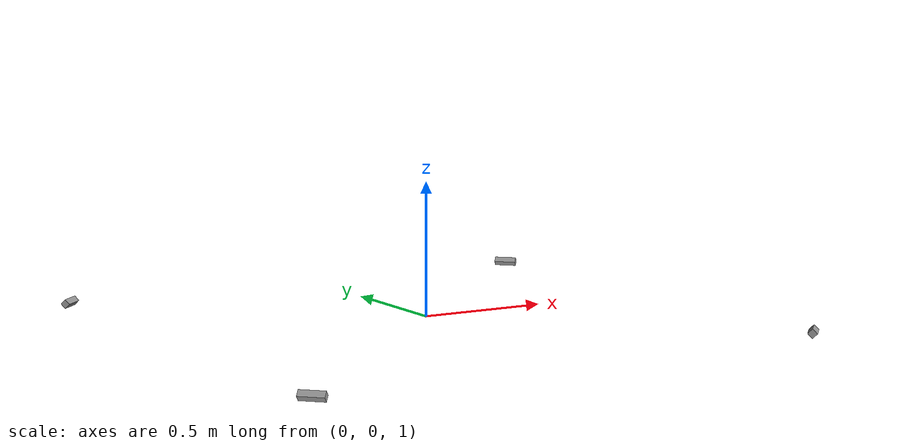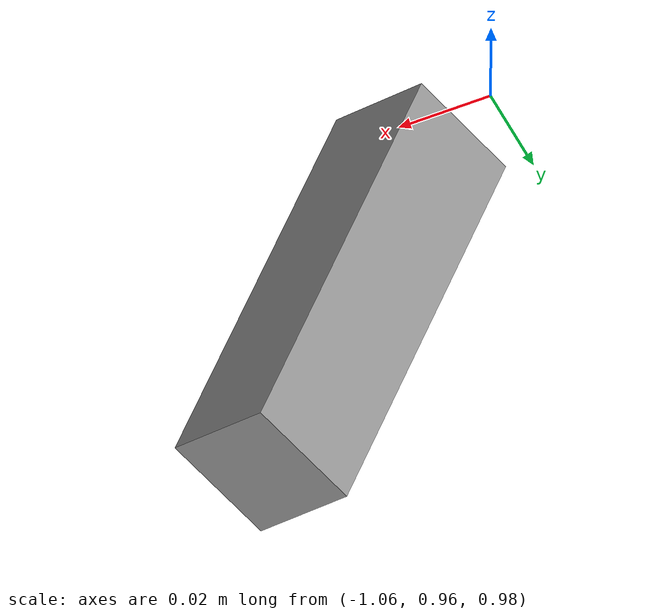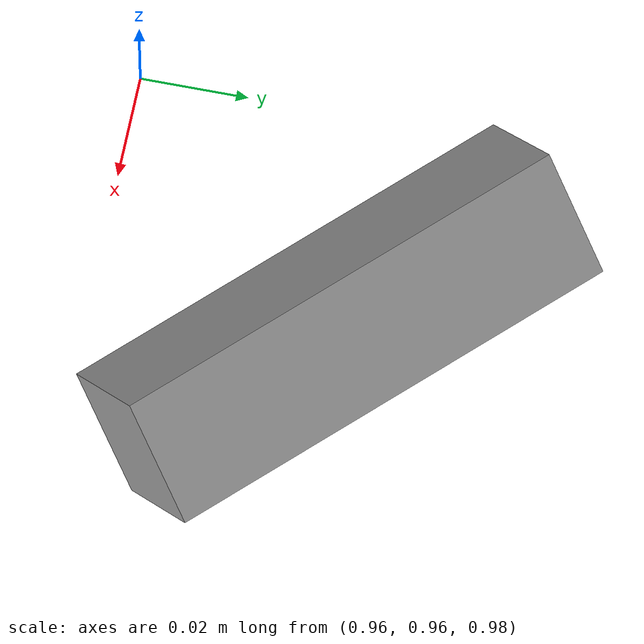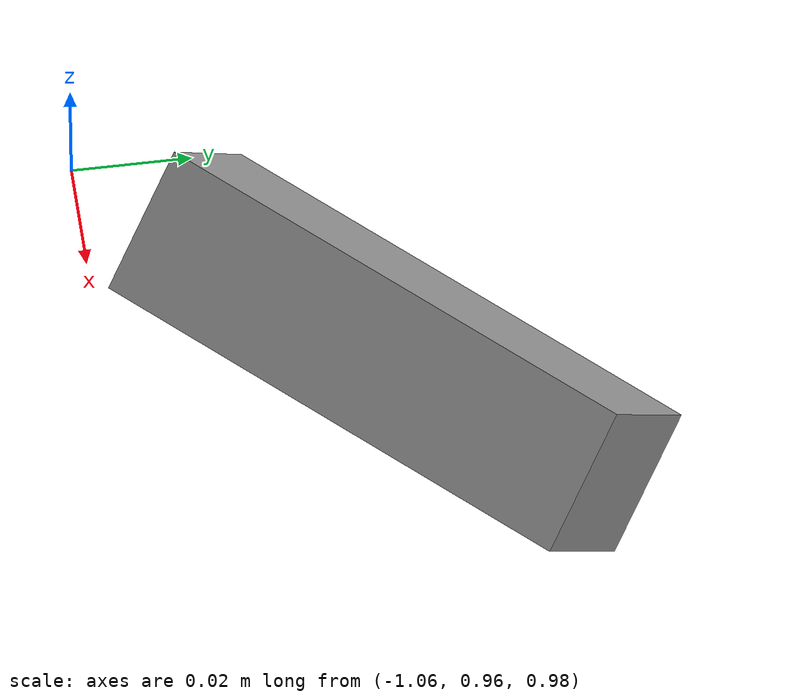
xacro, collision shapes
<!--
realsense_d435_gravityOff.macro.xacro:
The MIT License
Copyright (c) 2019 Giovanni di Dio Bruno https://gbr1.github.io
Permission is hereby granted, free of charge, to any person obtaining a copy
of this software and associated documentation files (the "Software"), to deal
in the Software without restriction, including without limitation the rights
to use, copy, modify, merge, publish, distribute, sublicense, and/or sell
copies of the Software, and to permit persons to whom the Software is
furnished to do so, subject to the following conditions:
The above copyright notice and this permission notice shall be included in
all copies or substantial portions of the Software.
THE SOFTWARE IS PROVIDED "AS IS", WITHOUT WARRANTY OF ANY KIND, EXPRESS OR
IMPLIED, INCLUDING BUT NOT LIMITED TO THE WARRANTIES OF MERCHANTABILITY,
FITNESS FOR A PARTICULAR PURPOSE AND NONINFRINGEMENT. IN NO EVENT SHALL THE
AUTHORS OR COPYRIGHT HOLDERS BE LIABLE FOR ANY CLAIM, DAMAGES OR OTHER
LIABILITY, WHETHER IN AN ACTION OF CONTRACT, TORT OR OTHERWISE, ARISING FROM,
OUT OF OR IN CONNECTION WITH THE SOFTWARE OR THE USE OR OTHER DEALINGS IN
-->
<?xml version="1.0" ?>
<robot name="scanner" xmlns:xacro="http://www.ros.org/wiki/xacro">

    <xacro:arg name="robot_namespace" default="/"/>
    <xacro:property name="path_meshes" value="package://mobiman_simulation/meshes" />
    <xacro:property name="M_PI" value="3.1415926535897931" />
    <xacro:property name="M_PI_2" value="1.570796327" />
    <xacro:property name="M_PI_4" value="0.785398163" />

    <xacro:include filename="$(find mobiman_simulation)/urdf/materials.xacro" />

    <!-- Import camera-->
    <xacro:include filename="$(find mobiman_simulation)/urdf/realsense_d435_gravityOff.macro.xacro" />

    <link name="base_link"></link>

    <!-- Create camera instance (1.0 1.0 1.0) -->
    <xacro:realsense-d435
        prefix="d435_cam1"
        parent="base_link">
        <origin xyz="1.0 1.0 1.0" rpy="0.0 ${3*M_PI_4} ${M_PI_4}" />
    </xacro:realsense-d435>

    <!-- Create camera instance (-1.0 1.0 1.0) -->
    <xacro:realsense-d435
        prefix="d435_cam2"
        parent="base_link">
        <origin xyz="-1.0 1.0 1.0" rpy="0.0 ${3*M_PI_4} ${3*M_PI_4}" />
    </xacro:realsense-d435>

    <!-- Create camera instance (-1.0 -1.0 1.0) -->
    <xacro:realsense-d435
        prefix="d435_cam3"
        parent="base_link">
        <origin xyz="-1.0 -1.0 1.0" rpy="0.0 ${M_PI_4} ${M_PI_4}" />
    </xacro:realsense-d435>

    <!-- Create camera instance (1.0 -1.0 1.0) -->
    <xacro:realsense-d435
        prefix="d435_cam4"
        parent="base_link">
        <origin xyz="1.0 -1.0 1.0" rpy="0.0 ${M_PI_4} ${3*M_PI_4}" />
    </xacro:realsense-d435>

</robot>

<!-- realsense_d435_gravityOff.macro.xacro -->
<robot name="d435" xmlns:xacro="http://ros.org/wiki/xacro">
    <!--xacro:macro name="d435" params="offset_x offset_y offset_z"-->
    <xacro:macro name="realsense-d435" params="prefix parent *origin">

        <xacro:property name="d435_cam_depth_to_left_ir_offset" value="0.0"/>
        <xacro:property name="d435_cam_depth_to_right_ir_offset" value="-0.050"/>
        <xacro:property name="d435_cam_depth_to_color_offset" value="0.015"/>

        <xacro:property name="d435_cam_width" value="0.090"/>
        <xacro:property name="d435_cam_height" value="0.025"/>
        <xacro:property name="d435_cam_depth" value="0.02505"/>
        <xacro:property name="d435_cam_mount_from_center_offset" value="0.0149"/>

        <xacro:property name="d435_cam_depth_px" value="${d435_cam_mount_from_center_offset}"/>
        <xacro:property name="d435_cam_depth_py" value="0.0175"/>
        <xacro:property name="d435_cam_depth_pz" value="${d435_cam_height/2}"/>
        <xacro:property name="gravityOff" value="true"/>

        <joint name="${prefix}camera_joint" type="fixed">
            <parent link="${parent}"/>
            <child link="${prefix}camera_bottom_screw_frame" />
            <xacro:insert_block name="origin"/>
            <!--origin rpy="0.0 0.0 0" xyz="${offset_x} ${offset_y} ${offset_z}"/-->
        </joint>

        <link name="${prefix}camera_bottom_screw_frame"/>
        <gazebo reference="${prefix}camera_bottom_screw_frame">
            <turnGravityOff>${gravityOff}</turnGravityOff>
        </gazebo>

        <joint name="${prefix}camera_link_joint" type="fixed">
            <origin xyz="0 ${d435_cam_depth_py} ${d435_cam_depth_pz}" rpy="0 0 0"/>
            <parent link="${prefix}camera_bottom_screw_frame"/>
            <child link="${prefix}camera_link" />
        </joint>

        <link name="${prefix}camera_link">
            <visual>
                <origin xyz="${d435_cam_mount_from_center_offset} ${-d435_cam_depth_py} 0" rpy="${M_PI_2} 0 ${M_PI_2}"/>
                <geometry>
                    <mesh filename="${path_meshes}/d435.stl" scale="0.001 0.001 0.001" />
                </geometry>
            <material name="erwhi_aluminum"/>
        </visual>
        <collision>
            <origin xyz="0 ${-d435_cam_depth_py} 0" rpy="0 0 0"/>
            <geometry>
                <box size="${d435_cam_depth} ${d435_cam_width} ${d435_cam_height}"/>
            </geometry>
        </collision>
        <inertial>
            <mass value="0.180" />
            <origin xyz="0 0 0" />
            <inertia ixx="0.003881243" ixy="0.0" ixz="0.0" iyy="0.000498940" iyz="0.0" izz="0.003879257" />
        </inertial>
        </link>
        <gazebo reference="${prefix}camera_link">
            <turnGravityOff>${gravityOff}</turnGravityOff>
            <material>Gazebo/Grey</material>
        </gazebo>

        <!-- camera depth joints and links -->
        <joint name="${prefix}camera_depth_joint" type="fixed">
            <origin xyz="0 0 0" rpy="0 0 0"/>
            <parent link="${prefix}camera_link"/>
            <child link="${prefix}camera_depth_frame" />
        </joint>
        <link name="${prefix}camera_depth_frame"/>
        <gazebo reference="${prefix}camera_depth_frame">
            <turnGravityOff>${gravityOff}</turnGravityOff>
        </gazebo>

        <joint name="${prefix}camera_depth_optical_joint" type="fixed">
            <origin xyz="0 0 0" rpy="${-M_PI_2} 0 ${-M_PI_2}" />
            <parent link="${prefix}camera_depth_frame" />
            <child link="${prefix}camera_depth_optical_frame" />
        </joint>
        <link name="${prefix}camera_depth_optical_frame"/>
        <gazebo reference="${prefix}camera_depth_optical_frame">
            <turnGravityOff>${gravityOff}</turnGravityOff>
        </gazebo>

        <!-- camera left IR joints and links -->
        <joint name="${prefix}camera_left_ir_joint" type="fixed">
            <origin xyz="0 ${d435_cam_depth_to_left_ir_offset} 0" rpy="0 0 0" />
            <parent link="${prefix}camera_depth_frame" />
            <child link="${prefix}camera_left_ir_frame" />
        </joint>
        <link name="${prefix}camera_left_ir_frame"/>
        <gazebo reference="${prefix}camera_left_ir_frame">
            <turnGravityOff>${gravityOff}</turnGravityOff>
        </gazebo>

        <joint name="${prefix}camera_left_ir_optical_joint" type="fixed">
            <origin xyz="0 0 0" rpy="${-M_PI_2} 0 ${-M_PI_2}" />
            <parent link="${prefix}camera_left_ir_frame" />
            <child link="${prefix}camera_left_ir_optical_frame" />
        </joint>
        <link name="${prefix}camera_left_ir_optical_frame"/>
        <gazebo reference="${prefix}camera_left_ir_optical_frame">
            <turnGravityOff>${gravityOff}</turnGravityOff>
        </gazebo>

        <!-- camera right IR joints and links -->
        <joint name="${prefix}camera_right_ir_joint" type="fixed">
            <origin xyz="0 ${d435_cam_depth_to_right_ir_offset} 0" rpy="0 0 0" />
            <parent link="${prefix}camera_depth_frame" />
            <child link="${prefix}camera_right_ir_frame" />
        </joint>
        <link name="${prefix}camera_right_ir_frame"/>
        <gazebo reference="${prefix}camera_right_ir_frame">
            <turnGravityOff>${gravityOff}</turnGravityOff>
        </gazebo>

        <joint name="${prefix}camera_right_ir_optical_joint" type="fixed">
            <origin xyz="0 0 0" rpy="${-M_PI_2} 0 ${-M_PI_2}" />
            <parent link="${prefix}camera_right_ir_frame" />
            <child link="${prefix}camera_right_ir_optical_frame" />
        </joint>
        <link name="${prefix}camera_right_ir_optical_frame"/>
        <gazebo reference="${prefix}camera_right_ir_optical_frame">
            <turnGravityOff>${gravityOff}</turnGravityOff>
        </gazebo>

        <!-- camera color joints and links -->
        <joint name="${prefix}camera_color_joint" type="fixed">
            <origin xyz="0 ${d435_cam_depth_to_color_offset} 0" rpy="0 0 0" />
            <parent link="${prefix}camera_depth_frame" />
            <child link="${prefix}camera_color_frame" />
        </joint>
        <link name="${prefix}camera_color_frame"/>
        <gazebo reference="${prefix}camera_color_frame">
            <turnGravityOff>${gravityOff}</turnGravityOff>
        </gazebo>

        <joint name="${prefix}camera_color_optical_joint" type="fixed">
            <origin xyz="0 0 0" rpy="${-M_PI_2} 0 ${-M_PI_2}" />
            <parent link="${prefix}camera_color_frame" />
            <child link="${prefix}camera_color_optical_frame" />
        </joint>
        <link name="${prefix}camera_color_optical_frame"/>
        <gazebo reference="${prefix}camera_color_optical_frame">
            <turnGravityOff>${gravityOff}</turnGravityOff>
        </gazebo>

        <link name="${prefix}camera_depth_frame_gazebo"/>
        <joint name="${prefix}gazebo_joint" type="fixed">
            <origin xyz="0 0 0" rpy="${-M_PI_2} 0 ${-M_PI_2}" />
            <parent link="${prefix}camera_link" />
            <child link="${prefix}camera_depth_frame_gazebo" />
        </joint>
        <gazebo reference="camera_depth_frame_gazebo">
            <turnGravityOff>${gravityOff}</turnGravityOff>
        </gazebo>

        <gazebo reference="${prefix}camera_link">
        <sensor name="${prefix}d435" type="depth">
            <update_rate>30</update_rate>
            <camera>
                <horizontal_fov>1.59174</horizontal_fov>
                <image>
                    <width>640</width>
                    <height>480</height>
                    <format>R8G8B8</format>
                </image>
                <clip>
                    <near>0.02</near>
                    <far>6</far>
                </clip>
            </camera>
            <plugin name="camera_plugin" filename="libgazebo_ros_openni_kinect.so">
                <visualize>true</visualize>
                <baseline>0.05</baseline>
                <alwaysOn>true</alwaysOn>
                <updateRate>0.0</updateRate>
                <cameraName>${prefix}d435</cameraName>
                <imageTopicName>/${prefix}d435/camera/color/image_raw</imageTopicName>
                <cameraInfoTopicName>/${prefix}d435/camera/color/camera_info</cameraInfoTopicName>
                <depthImageTopicName>/${prefix}d435/camera/depth/image_raw</depthImageTopicName>
                <depthImageInfoTopicName>/${prefix}d435/camera/depth/camera_info</depthImageInfoTopicName>
                <pointCloudTopicName>/${prefix}d435/camera/depth/color/points</pointCloudTopicName>
                <frameName>${prefix}camera_depth_frame_gazebo</frameName>
                <pointCloudCutoff>0.02</pointCloudCutoff>
                <distortionK1>0</distortionK1>
                <distortionK2>0</distortionK2>
                <distortionK3>0</distortionK3>
                <distortionT1>0</distortionT1>
                <distortionT2>0</distortionT2>
                <CxPrime>0</CxPrime>
                <Cx>0</Cx>
                <Cy>0</Cy>
                <focalLength>0</focalLength>
                <hackBaseline>0</hackBaseline>
            </plugin>
        </sensor>
    </gazebo>
    </xacro:macro>
</robot>
